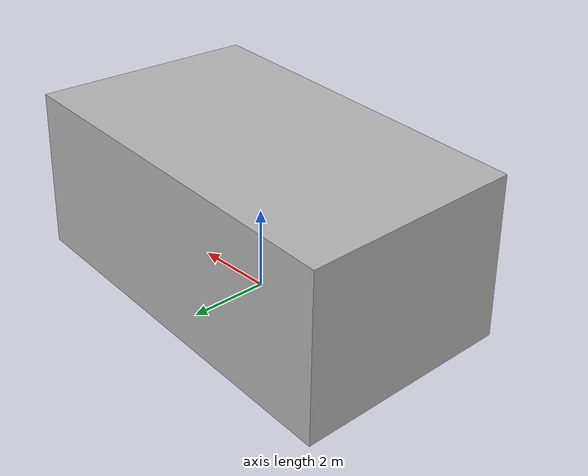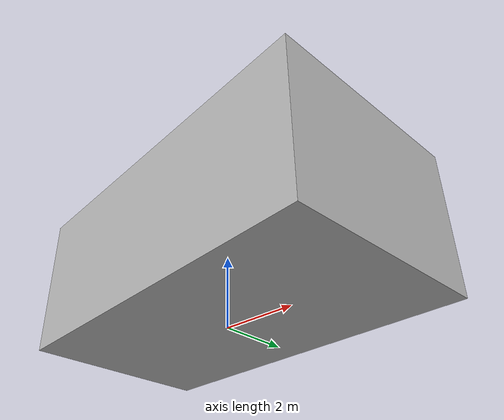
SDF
<?xml version="1.0" ?>
<sdf version="1.7">
  <model name="building_5233_actual_a_casa">
    <static>true</static>
    <link name="building_link">
      <visual name="building_visual">
        <geometry>
          <mesh>
            <uri>model://building_5233_actual_a_casa/meshes/construction_5233_actual_A_Casa_h4m.obj</uri>
          </mesh>
        </geometry>
      </visual>
    <collision name="building_collision">
      <geometry>
        <mesh>
          <uri>model://building_5233_actual_a_casa/meshes/construction_5233_actual_A_Casa_h4m.obj</uri>
        </mesh>
      </geometry>
    </collision>
    </link>
  </model>
</sdf>
